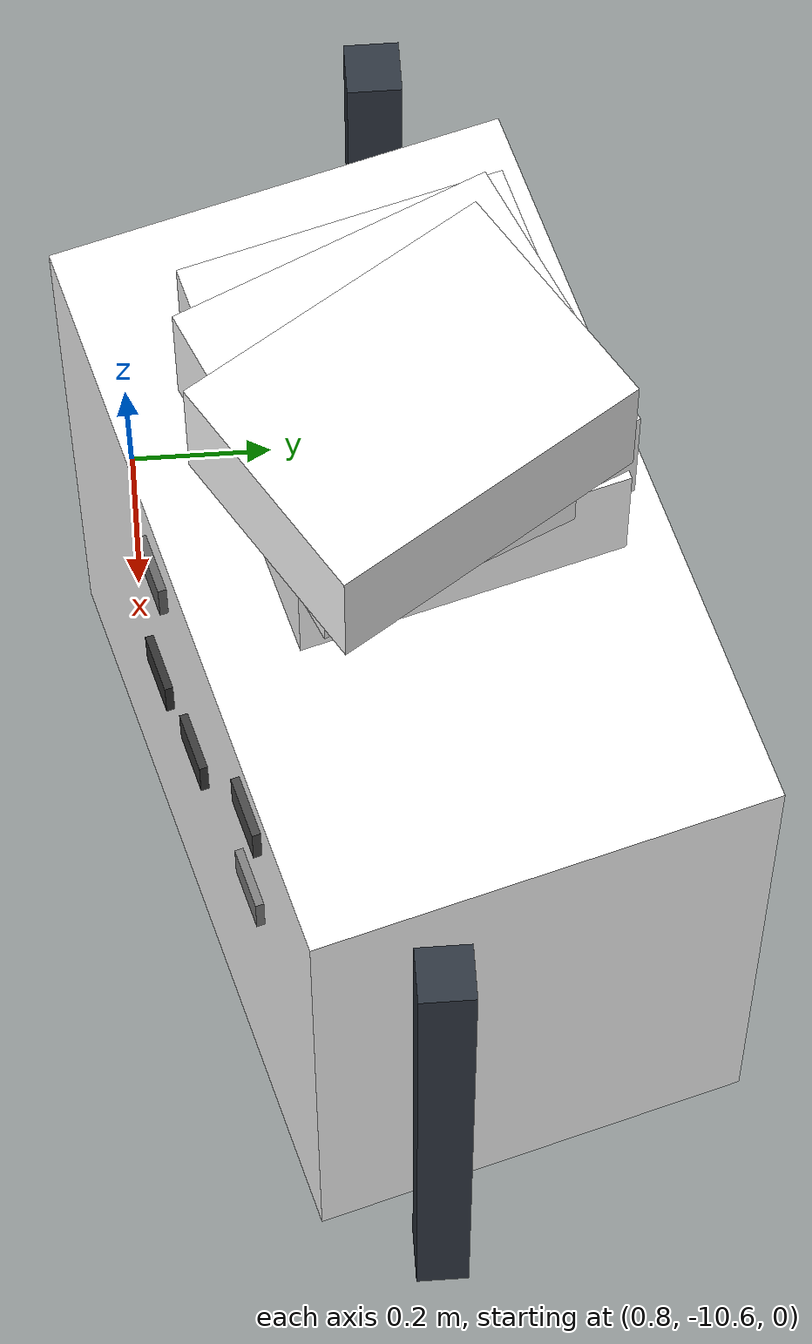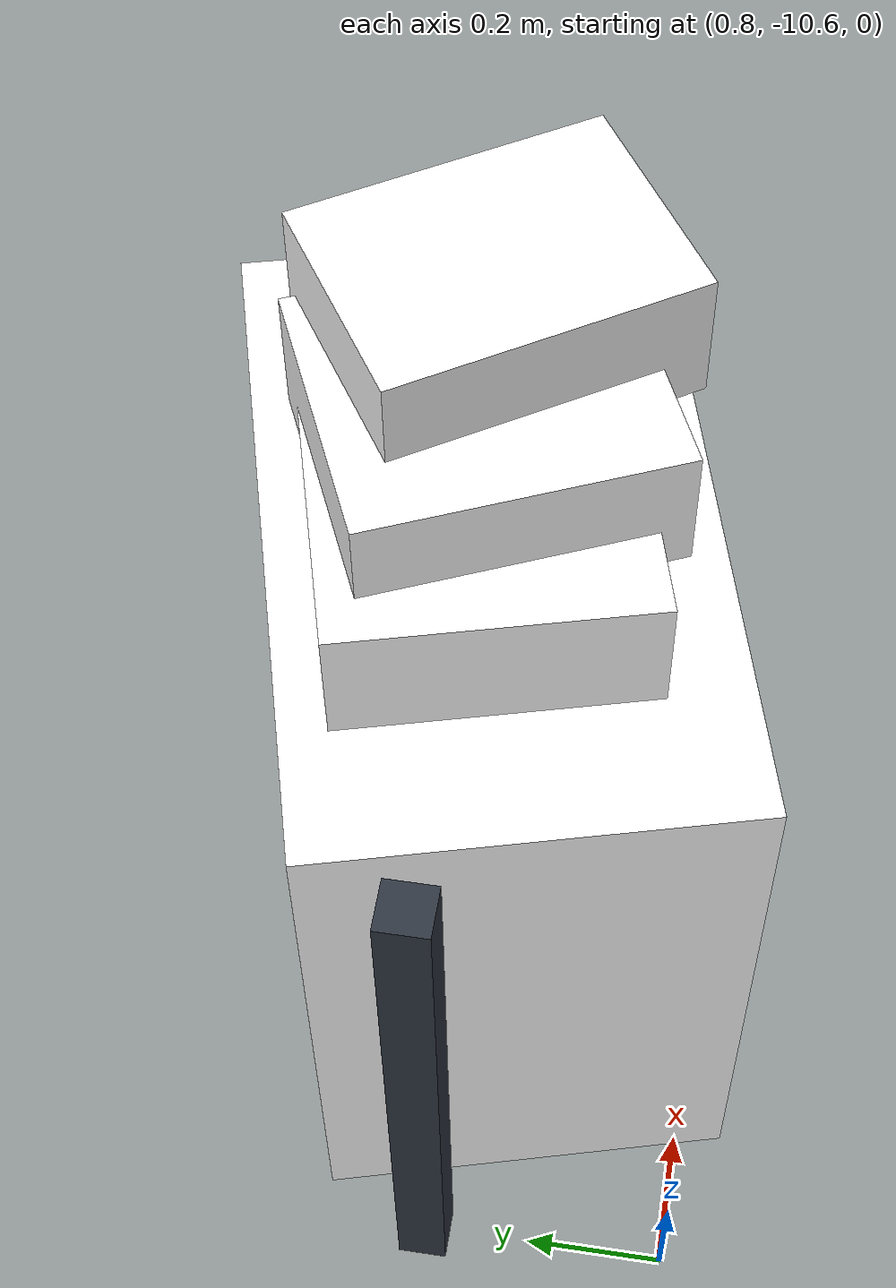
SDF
<sdf version="1.9">
 <world name="warehouse_irregular">
  <model name="cabinet_30">
   <static>true</static>
   <pose>1.4124446770005514 -10.246882666716688 0.4770862876401796 0 0 0.2701988877338769</pose>
   <link name="body">
    <visual name="surface">
     <geometry><box><size>1 0.6 0.9541725752803591</size></box></geometry>
     <material>
      <ambient>1 1 1 1</ambient>
      <diffuse>1 1 1 1</diffuse>
      <pbr>
       <metal>
        <albedo_map>model://feature_warehouse_materials/textures/storage_30.png</albedo_map>
        <roughness>.9</roughness>
        <metalness>0</metalness>
       </metal>
      </pbr>
     </material>
    </visual>
    <collision name="solid"><geometry><box><size>1 0.6 0.9541725752803591</size></box></geometry></collision>
   </link>
  </model>
  <model name="panel_30_0_-1">
   <static>true</static>
   <pose>1.398261845253622 -10.56729359690447 0.5322367802166146 0 0 0.2701988877338769</pose>
   <link name="body">
    <visual name="surface">
     <geometry><box><size>0.08 0.012 0.065</size></box></geometry>
     <material>
      <ambient>0.19475635392168988 0.19475635392168988 0.19475635392168988 1</ambient>
      <diffuse>0.19475635392168988 0.19475635392168988 0.19475635392168988 1</diffuse>
     </material>
    </visual>
   </link>
  </model>
  <model name="panel_30_1_-1">
   <static>true</static>
   <pose>1.5392255682018643 -10.528250554682149 0.5880931111128975 0 0 0.2701988877338769</pose>
   <link name="body">
    <visual name="surface">
     <geometry><box><size>0.08 0.012 0.065</size></box></geometry>
     <material>
      <ambient>0.22581636618489992 0.22581636618489992 0.22581636618489992 1</ambient>
      <diffuse>0.22581636618489992 0.22581636618489992 0.22581636618489992 1</diffuse>
     </material>
    </visual>
   </link>
  </model>
  <model name="panel_30_3_-1">
   <static>true</static>
   <pose>1.7554688927342994 -10.468357150383264 0.6442737092022814 0 0 0.2701988877338769</pose>
   <link name="body">
    <visual name="surface">
     <geometry><box><size>0.08 0.012 0.065</size></box></geometry>
     <material>
      <ambient>0.4903892564300527 0.4903892564300527 0.4903892564300527 1</ambient>
      <diffuse>0.4903892564300527 0.4903892564300527 0.4903892564300527 1</diffuse>
     </material>
    </visual>
   </link>
  </model>
  <model name="panel_30_4_-1">
   <static>true</static>
   <pose>1.4129565044683334 -10.563223583796393 0.8459391779778941 0 0 0.2701988877338769</pose>
   <link name="body">
    <visual name="surface">
     <geometry><box><size>0.08 0.012 0.065</size></box></geometry>
     <material>
      <ambient>0.39570520641391826 0.39570520641391826 0.39570520641391826 1</ambient>
      <diffuse>0.39570520641391826 0.39570520641391826 0.39570520641391826 1</diffuse>
     </material>
    </visual>
   </link>
  </model>
  <model name="panel_30_5_-1">
   <static>true</static>
   <pose>1.761403259288888 -10.46671349541227 0.8741486117425471 0 0 0.2701988877338769</pose>
   <link name="body">
    <visual name="surface">
     <geometry><box><size>0.08 0.012 0.065</size></box></geometry>
     <material>
      <ambient>0.27784577532732474 0.27784577532732474 0.27784577532732474 1</ambient>
      <diffuse>0.27784577532732474 0.27784577532732474 0.27784577532732474 1</diffuse>
     </material>
    </visual>
   </link>
  </model>
  <model name="carton_30_0">
   <static>true</static>
   <pose>1.3136415145912652 -10.246882666716688 1.0541725752803592 0 0 0.2701988877338769</pose>
   <link name="body">
    <visual name="surface">
     <geometry><box><size>0.45 0.42 0.18</size></box></geometry>
     <material>
      <ambient>1 1 1 1</ambient>
      <diffuse>1 1 1 1</diffuse>
      <pbr>
       <metal>
        <albedo_map>model://feature_warehouse_materials/textures/storage_30.png</albedo_map>
        <roughness>.9</roughness>
        <metalness>0</metalness>
       </metal>
      </pbr>
     </material>
    </visual>
    <collision name="solid"><geometry><box><size>0.45 0.42 0.18</size></box></geometry></collision>
   </link>
  </model>
  <model name="carton_30_1">
   <static>true</static>
   <pose>1.3720409124682449 -10.246882666716688 1.1741725752803593 0 0 0.4201988877338769</pose>
   <link name="body">
    <visual name="surface">
     <geometry><box><size>0.38 0.42 0.18</size></box></geometry>
     <material>
      <ambient>1 1 1 1</ambient>
      <diffuse>1 1 1 1</diffuse>
      <pbr>
       <metal>
        <albedo_map>model://feature_warehouse_materials/textures/storage_30.png</albedo_map>
        <roughness>.9</roughness>
        <metalness>0</metalness>
       </metal>
      </pbr>
     </material>
    </visual>
    <collision name="solid"><geometry><box><size>0.38 0.42 0.18</size></box></geometry></collision>
   </link>
  </model>
  <model name="carton_30_2">
   <static>true</static>
   <pose>1.4675873451247206 -10.246882666716688 1.2941725752803592 0 0 0.5701988877338768</pose>
   <link name="body">
    <visual name="surface">
     <geometry><box><size>0.31 0.42 0.18</size></box></geometry>
     <material>
      <ambient>1 1 1 1</ambient>
      <diffuse>1 1 1 1</diffuse>
      <pbr>
       <metal>
        <albedo_map>model://feature_warehouse_materials/textures/storage_30.png</albedo_map>
        <roughness>.9</roughness>
        <metalness>0</metalness>
       </metal>
      </pbr>
     </material>
    </visual>
    <collision name="solid"><geometry><box><size>0.31 0.42 0.18</size></box></geometry></collision>
   </link>
  </model>
  <model name="post_30_-1">
   <static>true</static>
   <pose>0.7924446770005514 -10.246882666716688 0.5 0 0 0</pose>
   <link name="body">
    <visual name="surface">
     <geometry><box><size>0.07 0.07 1</size></box></geometry>
     <material><ambient>0.18 0.21 0.25 1</ambient><diffuse>0.18 0.21 0.25 1</diffuse></material>
    </visual>
    <collision name="solid"><geometry><box><size>0.07 0.07 1</size></box></geometry></collision>
   </link>
  </model>
  <model name="post_30_1">
   <static>true</static>
   <pose>2.0324446770005515 -10.246882666716688 0.5 0 0 0</pose>
   <link name="body">
    <visual name="surface">
     <geometry><box><size>0.07 0.07 1</size></box></geometry>
     <material><ambient>0.18 0.21 0.25 1</ambient><diffuse>0.18 0.21 0.25 1</diffuse></material>
    </visual>
    <collision name="solid"><geometry><box><size>0.07 0.07 1</size></box></geometry></collision>
   </link>
  </model>
 </world>
</sdf>
